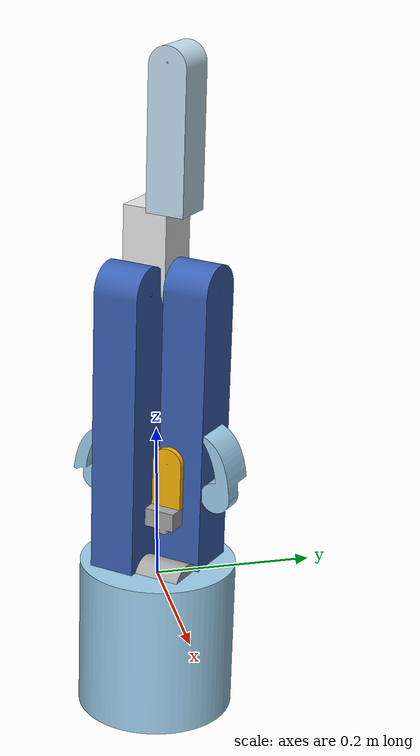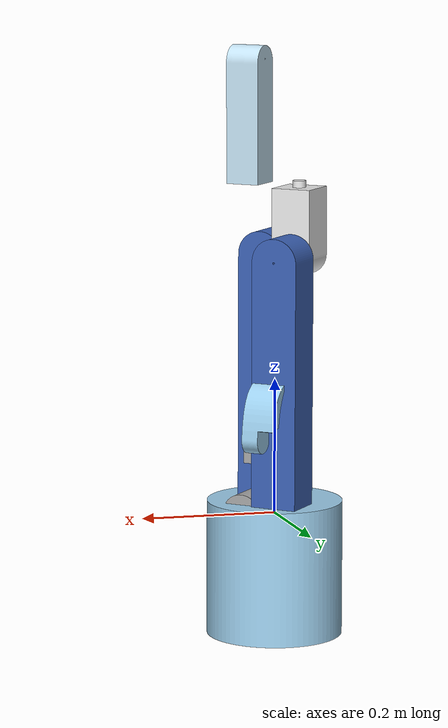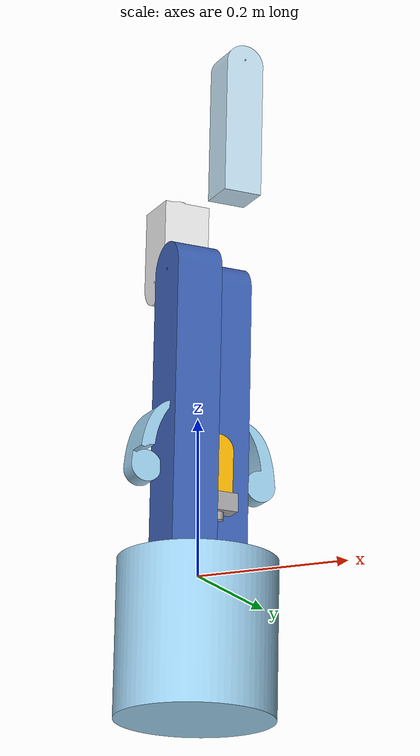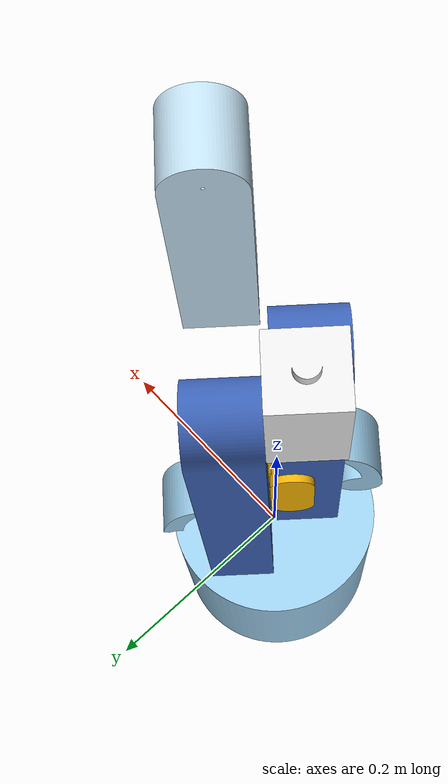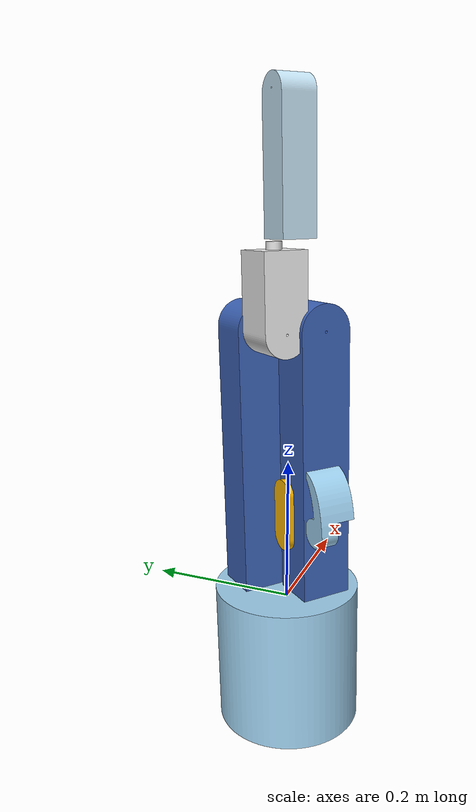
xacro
<?xml version="1.0"?>
<robot name="GS_arm"  xmlns:xacro= "http://www.ros.org/wiki/xacro">
<link name="part_1">
<visual>
<origin xyz="-0.048515588972450084115 -0.048381809756492616392 0.02168296178540153954" rpy="-2.9631100051819361241 -1.5407888913564720124 1.394061644504385411" />
<geometry>
<mesh filename="file://$(find arm_description_pkg)/meshes_upright_xacro_copy/part_1.stl"/>
</geometry>
<material name="part_1_material">
<color rgba="0.61568627450980395466 0.81176470588235294379 0.92941176470588238168 1.0"/>
</material>
</visual>
<collision>
<origin xyz="-0.048515588972450084115 -0.048381809756492616392 0.02168296178540153954" rpy="-2.9631100051819361241 -1.5407888913564720124 1.394061644504385411" />
<geometry>
<mesh filename="file://$(find arm_description_pkg)/meshes_upright_xacro_copy/part_1.stl"/>
</geometry>
</collision>
<inertial>
<origin xyz="3.9346208319395505624e-05 0.00029446104136088974146 0.0099838982703420505599" rpy="0 0 0"/>
<mass value="0.006609902445612011665" />
<inertia ixx="3.8557583804827948081e-07" ixy="-8.5817534015904601137e-12"  ixz="-2.9042567180569949555e-10" iyy="3.8552932008494348831e-07" iyz="-1.6261410778727158207e-09" izz="3.3054513047939213485e-07" />
</inertial>
</link>

<link name="part_2">
<visual>
<origin xyz="0.048859453325366328236 0.0029950000000000006999 0.056093852816584924281" rpy="5.9703311341315333088e-19 1.5764960949569704537e-18 3.7613820976254023211e-17" />
<geometry>
<mesh filename="file://$(find arm_description_pkg)/meshes_upright_xacro_copy/part_2.stl"/>
</geometry>
<material name="part_2_material">
<color rgba="0.64705882352941179736 0.64705882352941179736 0.64705882352941179736 1.0"/>
</material>
</visual>
<collision>
<origin xyz="0.048859453325366328236 0.0029950000000000006999 0.056093852816584924281" rpy="5.9703311341315333088e-19 1.5764960949569704537e-18 3.7613820976254023211e-17" />
<geometry>
<mesh filename="file://$(find arm_description_pkg)/meshes_upright_xacro_copy/part_2.stl"/>
</geometry>
</collision>
<inertial>
<origin xyz="6.9388939039072283776e-18 -1.5152666575259525593e-18 -0.0065746336890046414014" rpy="0 0 0"/>
<mass value="0.0004808546686908171967" />
<inertia ixx="9.2139062926419775468e-09" ixy="8.139769267325316743e-25"  ixz="-2.475053310557146353e-26" iyy="9.2892630950525905595e-09" iyz="-9.6407175983812253654e-27" izz="2.9508757354261818293e-09" />
</inertial>
</link>

<link name="arm_l2">
<visual>
<origin xyz="0.048859453325366328236 0.068093852816584921062 -3.4694469519536141888e-18" rpy="-1.570796326794896558 3.3082727961137533839e-18 4.2836429294882487265e-19" />
<geometry>
<mesh filename="file://$(find arm_description_pkg)/meshes_upright_xacro_copy/part_3.stl"/>
</geometry>
<material name="part_3_material">
<color rgba="0.2313725490196078538 0.38039215686274507888 0.7058823529411765163 1.0"/>
</material>
</visual>
<collision>
<origin xyz="0.048859453325366328236 0.068093852816584921062 -3.4694469519536141888e-18" rpy="-1.570796326794896558 3.3082727961137533839e-18 4.2836429294882487265e-19" />
<geometry>
<mesh filename="file://$(find arm_description_pkg)/meshes_upright_xacro_copy/part_3.stl"/>
</geometry>
</collision>
<visual>
<origin xyz="-0.048859453325366009047 0.068093852816583894105 0.0059999999999950995311" rpy="1.5707963267949300867 2.7769185012432494825e-14 -3.141592653589793116" />
<geometry>
<mesh filename="file://$(find arm_description_pkg)/meshes_upright_xacro_copy/part_3.stl"/>
</geometry>
<material name="part_3_material">
<color rgba="0.2313725490196078538 0.38039215686274507888 0.7058823529411765163 1.0"/>
</material>
</visual>
<collision>
<origin xyz="-0.048859453325366009047 0.068093852816583894105 0.0059999999999950995311" rpy="1.5707963267949300867 2.7769185012432494825e-14 -3.141592653589793116" />
<geometry>
<mesh filename="file://$(find arm_description_pkg)/meshes_upright_xacro_copy/part_3.stl"/>
</geometry>
</collision>
<inertial>
<origin xyz="4.1633363423443376429e-17 -0.019037059230557373812 0.0029999999999997029911" rpy="0 0 0"/>
<mass value="0.0018024175020168503505" />
<inertia ixx="2.9794982793760358521e-07" ixy="1.8117547509144998231e-23"  ixz="3.2375407516953010569e-21" iyy="4.5324558525216651031e-08" iyz="6.3828532344534446717e-22" izz="2.6757285137812776185e-07" />
</inertial>
</link>

<link name="part_4">
<visual>
<origin xyz="0.048859453325366328236 0.10580344317460763093 -0.0059999999999999949207" rpy="-1.570796326794896558 -2.568528757234289214e-17 1.2507229254702876666e-18" />
<geometry>
<mesh filename="file://$(find arm_description_pkg)/meshes_upright_xacro_copy/part_4.stl"/>
</geometry>
<material name="part_4_material">
<color rgba="0.91764705882352937127 0.91764705882352937127 0.91764705882352937127 1.0"/>
</material>
</visual>
<collision>
<origin xyz="0.048859453325366328236 0.10580344317460763093 -0.0059999999999999949207" rpy="-1.570796326794896558 -2.568528757234289214e-17 1.2507229254702876666e-18" />
<geometry>
<mesh filename="file://$(find arm_description_pkg)/meshes_upright_xacro_copy/part_4.stl"/>
</geometry>
</collision>
<inertial>
<origin xyz="0 -0.0057117447165234286333 -0.0029999999999999970267" rpy="0 0 0"/>
<mass value="0.00053403825361218694098" />
<inertia ixx="1.1631143592865942267e-08" ixy="2.1320178314783077322e-26"  ixz="4.9462198393585779837e-25" iyy="3.2279759003646011438e-09" iyz="-5.2880007843154898869e-26" izz="1.1672971935553085324e-08" />
</inertial>
</link>

<link name="part_5">
<visual>
<origin xyz="0.048859453325366342114 0.0029999999999999922562 0.11963971922331254061" rpy="-3.0312156515106290407e-18 6.8914379180104880284e-19 -4.9678747396574866895e-17" />
<geometry>
<mesh filename="file://$(find arm_description_pkg)/meshes_upright_xacro_copy/part_5.stl"/>
</geometry>
<material name="part_5_material">
<color rgba="0.76862745098039220171 0.88627450980392152857 0.95294117647058818044 1.0"/>
</material>
</visual>
<collision>
<origin xyz="0.048859453325366342114 0.0029999999999999922562 0.11963971922331254061" rpy="-3.0312156515106290407e-18 6.8914379180104880284e-19 -4.9678747396574866895e-17" />
<geometry>
<mesh filename="file://$(find arm_description_pkg)/meshes_upright_xacro_copy/part_5.stl"/>
</geometry>
</collision>
<inertial>
<origin xyz="0 -3.3929427308380349322e-18 -0.0096862342282897362367" rpy="0 0 0"/>
<mass value="0.00050620968453226309908" />
<inertia ixx="1.7292747018592618189e-08" ixy="-8.6796005849316754599e-25"  ixz="-1.206723927453641478e-26" iyy="1.7257442487639338247e-08" iyz="-5.6478357420234858492e-26" izz="2.1445115498377023545e-09" />
</inertial>
</link>

<link name="arm_endvec">
<visual>
<origin xyz="-0.032241423967342787427 0.057870514689952690102 0.0069999999999999749922" rpy="1.570796326794896336 -5.5172007175998599701e-17 -3.141592653589793116" />
<geometry>
<mesh filename="file://$(find arm_description_pkg)/meshes_upright_xacro_copy/part_6.stl"/>
</geometry>
<material name="part_6_material">
<color rgba="0.98039215686274505668 0.71372549019607844922 0.0039215686274509803377 1.0"/>
</material>
</visual>
<collision>
<origin xyz="-0.032241423967342787427 0.057870514689952690102 0.0069999999999999749922" rpy="1.570796326794896336 -5.5172007175998599701e-17 -3.141592653589793116" />
<geometry>
<mesh filename="file://$(find arm_description_pkg)/meshes_upright_xacro_copy/part_6.stl"/>
</geometry>
</collision>
<visual>
<origin xyz="0.032241423967343751933 0.05787051468995382808 -0.0020000000000000048121" rpy="-1.570796326794896558 3.3952139299299347159e-17 5.4986082872749708198e-18" />
<geometry>
<mesh filename="file://$(find arm_description_pkg)/meshes_upright_xacro_copy/part_6.stl"/>
</geometry>
<material name="part_6_material">
<color rgba="0.98039215686274505668 0.71372549019607844922 0.0039215686274509803377 1.0"/>
</material>
</visual>
<collision>
<origin xyz="0.032241423967343751933 0.05787051468995382808 -0.0020000000000000048121" rpy="-1.570796326794896558 3.3952139299299347159e-17 5.4986082872749708198e-18" />
<geometry>
<mesh filename="file://$(find arm_description_pkg)/meshes_upright_xacro_copy/part_6.stl"/>
</geometry>
</collision>
<inertial>
<origin xyz="-1.7347234759768070944e-17 0.0029802180805466350899 0.0024999999999999814038" rpy="0 0 0"/>
<mass value="0.00015286331097685208779" />
<inertia ixx="3.0189687538729663167e-09" ixy="1.5141618334763924121e-25"  ixz="9.0778278923035211859e-25" iyy="2.1145547742151836235e-09" iyz="5.6183052323074966867e-24" izz="1.2794076991921689214e-09" />
</inertial>
</link>

<link name="part_7">
<visual>
<origin xyz="0.032241423967343751933 -0.057870514689953855836 0.0019999999999999948375" rpy="1.570796326794896558 6.7151894296738239311e-17 7.3947303116085813605e-18" />
<geometry>
<mesh filename="file://$(find arm_description_pkg)/meshes_upright_xacro_copy/part_7.stl"/>
</geometry>
<material name="part_7_material">
<color rgba="0.61568627450980395466 0.81176470588235294379 0.92941176470588238168 1.0"/>
</material>
</visual>
<collision>
<origin xyz="0.032241423967343751933 -0.057870514689953855836 0.0019999999999999948375" rpy="1.570796326794896558 6.7151894296738239311e-17 7.3947303116085813605e-18" />
<geometry>
<mesh filename="file://$(find arm_description_pkg)/meshes_upright_xacro_copy/part_7.stl"/>
</geometry>
</collision>
<inertial>
<origin xyz="-0.0018778763456197276101 0.0038224345067999700339 -0.0021912702980041551433" rpy="0 0 0"/>
<mass value="0.00014229331727145028337" />
<inertia ixx="1.619226822912006319e-09" ixy="2.8910785378469890916e-10"  ixz="-7.892923260474739189e-11" iyy="5.4384221362638614807e-10" iyz="1.6430296018185187728e-10" izz="1.5973053132818108863e-09" />
</inertial>
</link>

<joint name="joint61" type="revolute">
<origin xyz="-1.0462550964485117788e-17 0.0060000000000000192069 -3.0357660829594124152e-18" rpy="-3.1415926535897851224 -8.6108532759730813131e-15 3.139847324337798895" />
<parent link="arm_endvec" />
<child link="part_7" />
<axis xyz="0 0 1"/>
<limit effort="1" velocity="20" lower="0.0017453292519943295908" upper="0.785398163397448279"/>
<joint_properties friction="0.0"/>
</joint>

<link name="part_7_2">
<visual>
<origin xyz="0.032241423967343751933 -0.05787051468995382808 0.0020000000000000017764" rpy="1.570796326794896558 -3.2146409090018830403e-18 1.8441980093554966676e-18" />
<geometry>
<mesh filename="file://$(find arm_description_pkg)/meshes_upright_xacro_copy/part_7.stl"/>
</geometry>
<material name="part_7_material">
<color rgba="0.61568627450980395466 0.81176470588235294379 0.92941176470588238168 1.0"/>
</material>
</visual>
<collision>
<origin xyz="0.032241423967343751933 -0.05787051468995382808 0.0020000000000000017764" rpy="1.570796326794896558 -3.2146409090018830403e-18 1.8441980093554966676e-18" />
<geometry>
<mesh filename="file://$(find arm_description_pkg)/meshes_upright_xacro_copy/part_7.stl"/>
</geometry>
</collision>
<inertial>
<origin xyz="-0.0018778763456197211049 0.0038224345067999973558 -0.0021912702980041503728" rpy="0 0 0"/>
<mass value="0.00014229331727145028337" />
<inertia ixx="1.6192268229120059054e-09" ixy="2.8910785378469880576e-10"  ixz="-7.8929232604747185095e-11" iyy="5.4384221362638614807e-10" iyz="1.6430296018185190313e-10" izz="1.5973053132818108863e-09" />
</inertial>
</link>

<joint name="joint62" type="revolute">
<origin xyz="-2.8080836267374564841e-17 0.005999999999999880429 0.0049999999999999749506" rpy="-2.4591996825169363138e-15 3.723392664202142389e-15 0.0017453292519943037868" />
<parent link="arm_endvec" />
<child link="part_7_2" />
<axis xyz="0 0 1"/>
<limit effort="1" velocity="20" lower="0.0017453292519943295908" upper="0.785398163397448279"/>
<joint_properties friction="0.0"/>
</joint>

<link name="part_8">
<visual>
<origin xyz="0.032241423967343758872 0.053156491136578713774 -2.6020852139652106416e-18" rpy="-1.570796326794896558 1.4213900380178171502e-17 1.794624716202049848e-19" />
<geometry>
<mesh filename="file://$(find arm_description_pkg)/meshes_upright_xacro_copy/part_8.stl"/>
</geometry>
<material name="part_8_material">
<color rgba="0.64705882352941179736 0.64705882352941179736 0.64705882352941179736 1.0"/>
</material>
</visual>
<collision>
<origin xyz="0.032241423967343758872 0.053156491136578713774 -2.6020852139652106416e-18" rpy="-1.570796326794896558 1.4213900380178171502e-17 1.794624716202049848e-19" />
<geometry>
<mesh filename="file://$(find arm_description_pkg)/meshes_upright_xacro_copy/part_8.stl"/>
</geometry>
</collision>
<inertial>
<origin xyz="-6.9388939039072283776e-18 -6.8787559343204407458e-05 -0.001400000000000002371" rpy="0 0 0"/>
<mass value="4.1683231231072220173e-05" />
<inertia ixx="7.2333447456293211371e-11" ixy="-5.5986418893166599128e-28"  ixz="-1.3910746246086449193e-26" iyy="8.0388087304381288815e-11" iyz="2.4810139852935701241e-28" izz="9.9693918154647561433e-11" />
</inertial>
</link>

<joint name="camJoint" type="fixed">
<origin xyz="-5.0957502106818708398e-18 0.0030000000000000165423 -0.0020000000000000004753" rpy="-1.957252694083210223e-15 8.6221801800839255138e-17 -3.141592653589793116" />
<parent link="arm_endvec" />
<child link="part_8" />
<axis xyz="0 0 1"/>
<limit effort="1" velocity="20" />
<joint_properties friction="0.0"/>
</joint>

<link name ="cam_link_oriented">
</link>

<joint name="camJoint_oriented" type="fixed">
    <origin xyz="0 -0.001 -0.001" rpy="3.1415 0 -1.57"/>
    <parent link="part_8" />
    <child link="cam_link_oriented" />
</joint>

<joint name="joint5" type="revolute">
<origin xyz="0.0025000000000000004857 -1.2042267411114387921e-17 -0.018025706946078176585" rpy="-1.570796326794896558 0.0029250332346841597525 1.5707963267948972241" />
<parent link="part_5" />
<child link="arm_endvec" />
<axis xyz="0 0 1"/>
<limit effort="1" velocity="20" lower="-0.785398163397448279" upper="0.785398163397448279"/>
<joint_properties friction="0.0"/>
</joint>

<joint name="joint4" type="revolute">
<origin xyz="-2.3744027577432547105e-17 -0.013836276048704937436 -0.0029999999999999948583" rpy="1.570796326794896558 7.9423360664544827361e-13 -3.1415926535897886751" />
<parent link="part_4" />
<child link="part_5" />
<axis xyz="0 0 1"/>
<limit effort="1" velocity="20" lower="-6.283185307179586232" upper="6.283185307179586232"/>
<joint_properties friction="0.0"/>
</joint>

<joint name="joint3" type="revolute">
<origin xyz="1.0033952293174441817e-17 -0.037709590358022709866 2.6020852139652106416e-18" rpy="3.1415926535897771288 -2.752648323891600667e-14 -3.1362970286540980958" />
<parent link="arm_l2" />
<child link="part_4" />
<axis xyz="0 0 1"/>
<limit effort="1" velocity="20" lower="-1.7453292519943295336" upper="1.7453292519943295336"/>
<joint_properties friction="0.0"/>
</joint>

<joint name="joint2" type="revolute">
<origin xyz="6.89484819065000476e-18 0.0029950000000000011335 -0.012000000000000010658" rpy="1.570796326794896558 -2.1133530940768447459e-15 -3.1840252851980965534e-14" />
<parent link="part_2" />
<child link="arm_l2" />
<axis xyz="0 0 1"/>
<limit effort="1" velocity="20" lower="-2.0943951023931952626" upper="2.0943951023931952626"/>
<joint_properties friction="0.0"/>
</joint>

<joint name="joint1" type="revolute">
<origin xyz="9.2096118081065603267e-05 0.00058981645737652549366 0.019979384169771963187" rpy="3.1157378617112496677 -0.015232452947603327895 -0.70902660590734545298" />
<parent link="part_1" />
<child link="part_2" />
<axis xyz="0 0 1"/>
<limit effort="1" velocity="20" lower="-3.141592653589793116" upper="3.141592653589793116"/>
<joint_properties friction="0.0"/>
</joint>

<link name="world"/>

<joint name="joint0" type="fixed">
<parent link="world"/>
<child link="part_1"/>
</joint>

</robot>
